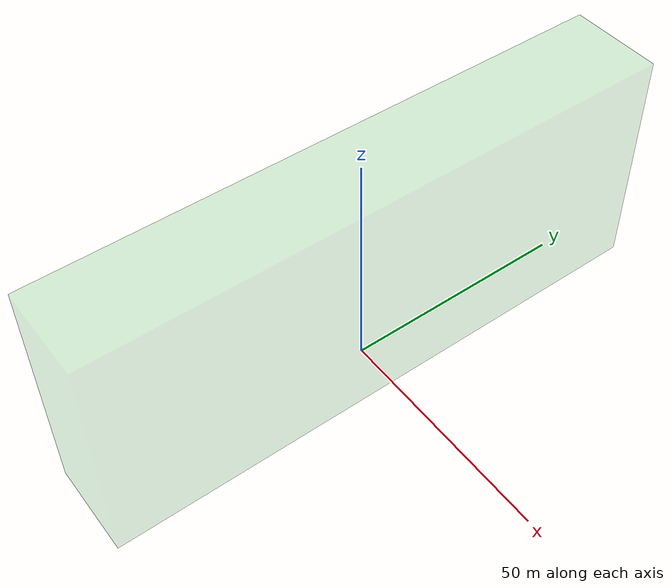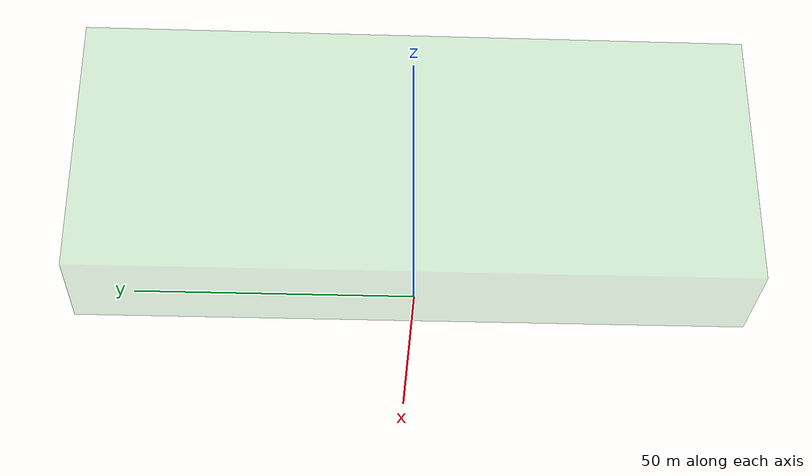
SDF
<?xml version="1.0" ?>
<sdf version="1.5">
  <model name="flight_box">
    <static>true</static>
    <link name="link">
      <visual name="visual">
        <cast_shadows>0</cast_shadows>
        <transparency>0.8</transparency>
        <pose>0 0 25 0 0 0</pose>
        <cast_shadows>true</cast_shadows>
        <geometry>
            <box><size>20 124 50</size></box>
        </geometry>
        <material>
          <script>
            <uri>file://media/materials/scripts/gazebo.material</uri>
            <name>Gazebo/GreenTransparent</name>
          </script>
        </material>
    </visual>
    </link>
  </model>
</sdf>
